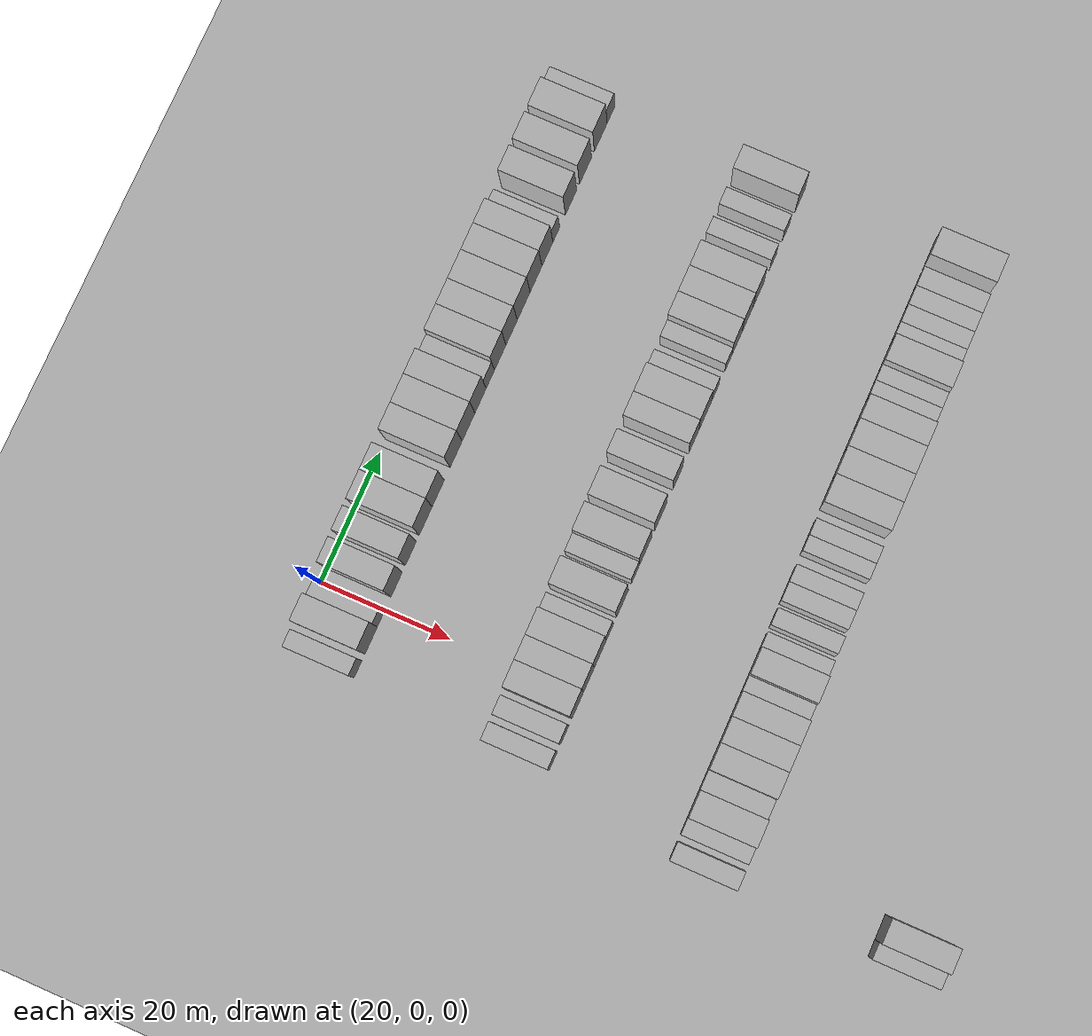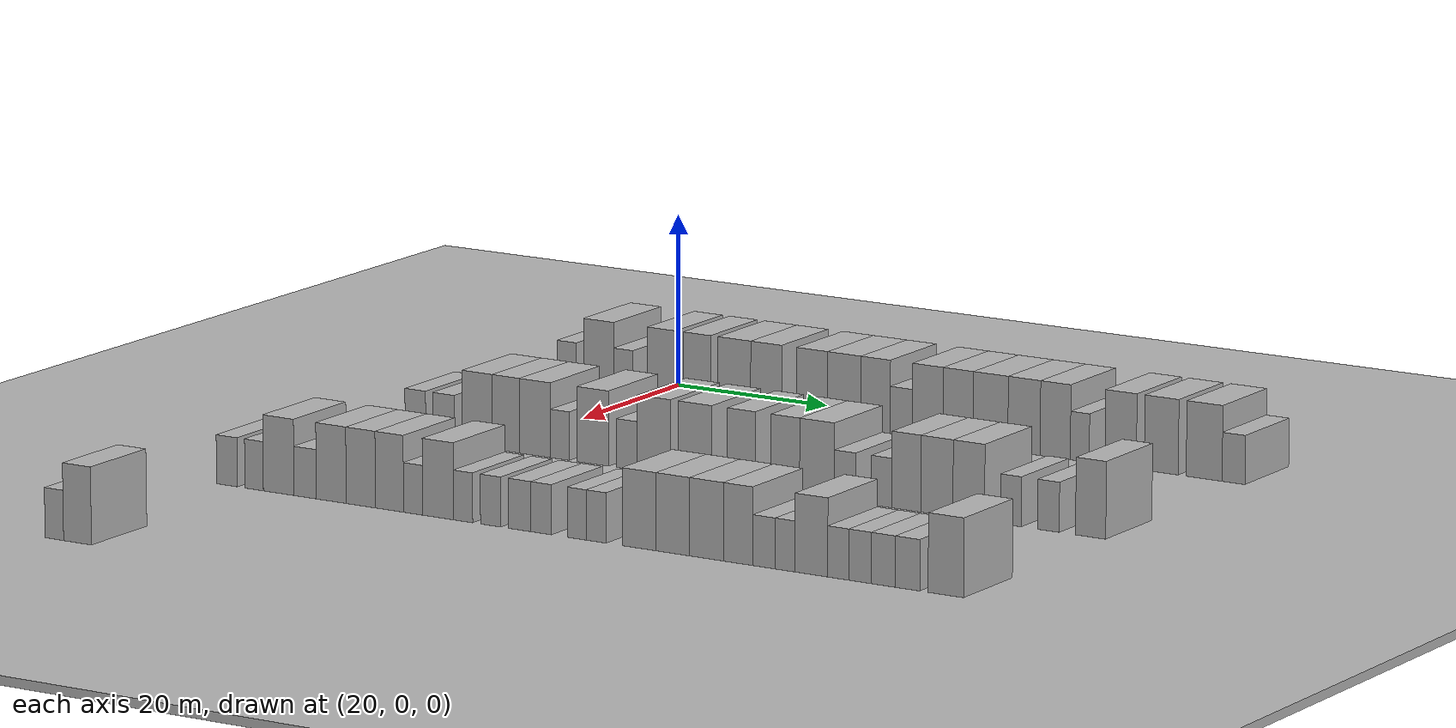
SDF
<sdf version="1.6">
 <world name="default">
  <include><name>ground_plane_1</name><uri>model://HANNAS_ground_plane</uri></include>
  <include>
   <name>ground_plane_2</name>
   <uri>model://HANNAS_ground_plane</uri>
   <pose>100 0 0  0 0 0</pose>
  </include>
  <model name="building_116">
   <static>1</static>
   <pose>25.0000 -8.9039 0 0.000000 0.000000 0.000000</pose>
   <link name="link">
    <pose>0 0 3.00 0 0 0</pose>
    <collision name="collision"><geometry><box><size>10.0000 2.6081 6.0000</size></box></geometry></collision>
    <visual name="visual">
     <cast_shadows>0</cast_shadows>
     <geometry><box><size>10.0000 2.6081 6.0000</size></box></geometry>
     <material>
      <script>
       <uri>model://HANNAS_wall/materials/scripts</uri>
       <uri>model://HANNAS_wall/materials/textures</uri>
       <name>vrc/HANNAS_wall</name>
      </script>
     </material>
    </visual>
   </link>
  </model>
  <model name="building_117">
   <static>1</static>
   <pose>25.0000 -4.5359 0 0.000000 0.000000 0.000000</pose>
   <link name="link">
    <pose>0 0 4.50 0 0 0</pose>
    <collision name="collision"><geometry><box><size>10.0000 4.1280 9.0000</size></box></geometry></collision>
    <visual name="visual">
     <cast_shadows>0</cast_shadows>
     <geometry><box><size>10.0000 4.1280 9.0000</size></box></geometry>
     <material>
      <script>
       <uri>model://HANNAS_wall/materials/scripts</uri>
       <uri>model://HANNAS_wall/materials/textures</uri>
       <name>vrc/HANNAS_wall</name>
      </script>
     </material>
    </visual>
   </link>
  </model>
  <model name="building_118">
   <static>1</static>
   <pose>25.0000 -1.1816 0 0.000000 0.000000 0.000000</pose>
   <link name="link">
    <pose>0 0 3.00 0 0 0</pose>
    <collision name="collision"><geometry><box><size>10.0000 2.5805 6.0000</size></box></geometry></collision>
    <visual name="visual">
     <cast_shadows>0</cast_shadows>
     <geometry><box><size>10.0000 2.5805 6.0000</size></box></geometry>
     <material>
      <script>
       <uri>model://HANNAS_wall/materials/scripts</uri>
       <uri>model://HANNAS_wall/materials/textures</uri>
       <name>vrc/HANNAS_wall</name>
      </script>
     </material>
    </visual>
   </link>
  </model>
  <model name="building_119">
   <static>1</static>
   <pose>25.0000 4.0080 0 0.000000 0.000000 0.000000</pose>
   <link name="link">
    <pose>0 0 4.50 0 0 0</pose>
    <collision name="collision"><geometry><box><size>10.0000 3.7988 9.0000</size></box></geometry></collision>
    <visual name="visual">
     <cast_shadows>0</cast_shadows>
     <geometry><box><size>10.0000 3.7988 9.0000</size></box></geometry>
     <material>
      <script>
       <uri>model://HANNAS_wall/materials/scripts</uri>
       <uri>model://HANNAS_wall/materials/textures</uri>
       <name>vrc/HANNAS_wall</name>
      </script>
     </material>
    </visual>
   </link>
  </model>
  <model name="building_120">
   <static>1</static>
   <pose>25.0000 8.7498 0 0.000000 0.000000 0.000000</pose>
   <link name="link">
    <pose>0 0 4.50 0 0 0</pose>
    <collision name="collision"><geometry><box><size>10.0000 3.6847 9.0000</size></box></geometry></collision>
    <visual name="visual">
     <cast_shadows>0</cast_shadows>
     <geometry><box><size>10.0000 3.6847 9.0000</size></box></geometry>
     <material>
      <script>
       <uri>model://HANNAS_wall/materials/scripts</uri>
       <uri>model://HANNAS_wall/materials/textures</uri>
       <name>vrc/HANNAS_wall</name>
      </script>
     </material>
    </visual>
   </link>
  </model>
  <model name="building_121">
   <static>1</static>
   <pose>25.0000 13.7771 0 0.000000 0.000000 0.000000</pose>
   <link name="link">
    <pose>0 0 4.50 0 0 0</pose>
    <collision name="collision"><geometry><box><size>10.0000 4.3699 9.0000</size></box></geometry></collision>
    <visual name="visual">
     <cast_shadows>0</cast_shadows>
     <geometry><box><size>10.0000 4.3699 9.0000</size></box></geometry>
     <material>
      <script>
       <uri>model://HANNAS_wall/materials/scripts</uri>
       <uri>model://HANNAS_wall/materials/textures</uri>
       <name>vrc/HANNAS_wall</name>
      </script>
     </material>
    </visual>
   </link>
  </model>
  <model name="building_122">
   <static>1</static>
   <pose>25.0000 18.0239 0 0.000000 0.000000 0.000000</pose>
   <link name="link">
    <pose>0 0 4.50 0 0 0</pose>
    <collision name="collision"><geometry><box><size>10.0000 4.1237 9.0000</size></box></geometry></collision>
    <visual name="visual">
     <cast_shadows>0</cast_shadows>
     <geometry><box><size>10.0000 4.1237 9.0000</size></box></geometry>
     <material>
      <script>
       <uri>model://HANNAS_wall/materials/scripts</uri>
       <uri>model://HANNAS_wall/materials/textures</uri>
       <name>vrc/HANNAS_wall</name>
      </script>
     </material>
    </visual>
   </link>
  </model>
  <model name="building_123">
   <static>1</static>
   <pose>25.0000 24.1255 0 0.000000 0.000000 0.000000</pose>
   <link name="link">
    <pose>0 0 4.50 0 0 0</pose>
    <collision name="collision"><geometry><box><size>10.0000 4.0795 9.0000</size></box></geometry></collision>
    <visual name="visual">
     <cast_shadows>0</cast_shadows>
     <geometry><box><size>10.0000 4.0795 9.0000</size></box></geometry>
     <material>
      <script>
       <uri>model://HANNAS_wall/materials/scripts</uri>
       <uri>model://HANNAS_wall/materials/textures</uri>
       <name>vrc/HANNAS_wall</name>
      </script>
     </material>
    </visual>
   </link>
  </model>
  <model name="building_124">
   <static>1</static>
   <pose>25.0000 28.3544 0 0.000000 0.000000 0.000000</pose>
   <link name="link">
    <pose>0 0 4.50 0 0 0</pose>
    <collision name="collision"><geometry><box><size>10.0000 4.3783 9.0000</size></box></geometry></collision>
    <visual name="visual">
     <cast_shadows>0</cast_shadows>
     <geometry><box><size>10.0000 4.3783 9.0000</size></box></geometry>
     <material>
      <script>
       <uri>model://HANNAS_wall/materials/scripts</uri>
       <uri>model://HANNAS_wall/materials/textures</uri>
       <name>vrc/HANNAS_wall</name>
      </script>
     </material>
    </visual>
   </link>
  </model>
  <model name="building_125">
   <static>1</static>
   <pose>25.0000 32.4743 0 0.000000 0.000000 0.000000</pose>
   <link name="link">
    <pose>0 0 4.50 0 0 0</pose>
    <collision name="collision"><geometry><box><size>10.0000 3.8614 9.0000</size></box></geometry></collision>
    <visual name="visual">
     <cast_shadows>0</cast_shadows>
     <geometry><box><size>10.0000 3.8614 9.0000</size></box></geometry>
     <material>
      <script>
       <uri>model://HANNAS_wall/materials/scripts</uri>
       <uri>model://HANNAS_wall/materials/textures</uri>
       <name>vrc/HANNAS_wall</name>
      </script>
     </material>
    </visual>
   </link>
  </model>
  <model name="building_126">
   <static>1</static>
   <pose>25.0000 35.8533 0 0.000000 0.000000 0.000000</pose>
   <link name="link">
    <pose>0 0 3.00 0 0 0</pose>
    <collision name="collision"><geometry><box><size>10.0000 2.8966 6.0000</size></box></geometry></collision>
    <visual name="visual">
     <cast_shadows>0</cast_shadows>
     <geometry><box><size>10.0000 2.8966 6.0000</size></box></geometry>
     <material>
      <script>
       <uri>model://HANNAS_wall/materials/scripts</uri>
       <uri>model://HANNAS_wall/materials/textures</uri>
       <name>vrc/HANNAS_wall</name>
      </script>
     </material>
    </visual>
   </link>
  </model>
  <model name="building_127">
   <static>1</static>
   <pose>25.0000 39.2878 0 0.000000 0.000000 0.000000</pose>
   <link name="link">
    <pose>0 0 4.50 0 0 0</pose>
    <collision name="collision"><geometry><box><size>10.0000 3.9725 9.0000</size></box></geometry></collision>
    <visual name="visual">
     <cast_shadows>0</cast_shadows>
     <geometry><box><size>10.0000 3.9725 9.0000</size></box></geometry>
     <material>
      <script>
       <uri>model://HANNAS_wall/materials/scripts</uri>
       <uri>model://HANNAS_wall/materials/textures</uri>
       <name>vrc/HANNAS_wall</name>
      </script>
     </material>
    </visual>
   </link>
  </model>
  <model name="building_128">
   <static>1</static>
   <pose>25.0000 43.2320 0 0.000000 0.000000 0.000000</pose>
   <link name="link">
    <pose>0 0 4.50 0 0 0</pose>
    <collision name="collision"><geometry><box><size>10.0000 3.9159 9.0000</size></box></geometry></collision>
    <visual name="visual">
     <cast_shadows>0</cast_shadows>
     <geometry><box><size>10.0000 3.9159 9.0000</size></box></geometry>
     <material>
      <script>
       <uri>model://HANNAS_wall/materials/scripts</uri>
       <uri>model://HANNAS_wall/materials/textures</uri>
       <name>vrc/HANNAS_wall</name>
      </script>
     </material>
    </visual>
   </link>
  </model>
  <model name="building_129">
   <static>1</static>
   <pose>25.0000 47.4251 0 0.000000 0.000000 0.000000</pose>
   <link name="link">
    <pose>0 0 4.50 0 0 0</pose>
    <collision name="collision"><geometry><box><size>10.0000 4.4703 9.0000</size></box></geometry></collision>
    <visual name="visual">
     <cast_shadows>0</cast_shadows>
     <geometry><box><size>10.0000 4.4703 9.0000</size></box></geometry>
     <material>
      <script>
       <uri>model://HANNAS_wall/materials/scripts</uri>
       <uri>model://HANNAS_wall/materials/textures</uri>
       <name>vrc/HANNAS_wall</name>
      </script>
     </material>
    </visual>
   </link>
  </model>
  <model name="building_130">
   <static>1</static>
   <pose>25.0000 51.7358 0 0.000000 0.000000 0.000000</pose>
   <link name="link">
    <pose>0 0 4.50 0 0 0</pose>
    <collision name="collision"><geometry><box><size>10.0000 4.1511 9.0000</size></box></geometry></collision>
    <visual name="visual">
     <cast_shadows>0</cast_shadows>
     <geometry><box><size>10.0000 4.1511 9.0000</size></box></geometry>
     <material>
      <script>
       <uri>model://HANNAS_wall/materials/scripts</uri>
       <uri>model://HANNAS_wall/materials/textures</uri>
       <name>vrc/HANNAS_wall</name>
      </script>
     </material>
    </visual>
   </link>
  </model>
  <model name="building_131">
   <static>1</static>
   <pose>25.0000 55.7422 0 0.000000 0.000000 0.000000</pose>
   <link name="link">
    <pose>0 0 4.50 0 0 0</pose>
    <collision name="collision"><geometry><box><size>10.0000 3.8616 9.0000</size></box></geometry></collision>
    <visual name="visual">
     <cast_shadows>0</cast_shadows>
     <geometry><box><size>10.0000 3.8616 9.0000</size></box></geometry>
     <material>
      <script>
       <uri>model://HANNAS_wall/materials/scripts</uri>
       <uri>model://HANNAS_wall/materials/textures</uri>
       <name>vrc/HANNAS_wall</name>
      </script>
     </material>
    </visual>
   </link>
  </model>
  <model name="building_132">
   <static>1</static>
   <pose>25.0000 58.8784 0 0.000000 0.000000 0.000000</pose>
   <link name="link">
    <pose>0 0 3.00 0 0 0</pose>
    <collision name="collision"><geometry><box><size>10.0000 2.4108 6.0000</size></box></geometry></collision>
    <visual name="visual">
     <cast_shadows>0</cast_shadows>
     <geometry><box><size>10.0000 2.4108 6.0000</size></box></geometry>
     <material>
      <script>
       <uri>model://HANNAS_wall/materials/scripts</uri>
       <uri>model://HANNAS_wall/materials/textures</uri>
       <name>vrc/HANNAS_wall</name>
      </script>
     </material>
    </visual>
   </link>
  </model>
  <model name="building_133">
   <static>1</static>
   <pose>25.0000 64.0656 0 0.000000 0.000000 0.000000</pose>
   <link name="link">
    <pose>0 0 4.50 0 0 0</pose>
    <collision name="collision"><geometry><box><size>10.0000 3.9636 9.0000</size></box></geometry></collision>
    <visual name="visual">
     <cast_shadows>0</cast_shadows>
     <geometry><box><size>10.0000 3.9636 9.0000</size></box></geometry>
     <material>
      <script>
       <uri>model://HANNAS_wall/materials/scripts</uri>
       <uri>model://HANNAS_wall/materials/textures</uri>
       <name>vrc/HANNAS_wall</name>
      </script>
     </material>
    </visual>
   </link>
  </model>
  <model name="building_134">
   <static>1</static>
   <pose>25.0000 69.1838 0 0.000000 0.000000 0.000000</pose>
   <link name="link">
    <pose>0 0 4.50 0 0 0</pose>
    <collision name="collision"><geometry><box><size>10.0000 4.2728 9.0000</size></box></geometry></collision>
    <visual name="visual">
     <cast_shadows>0</cast_shadows>
     <geometry><box><size>10.0000 4.2728 9.0000</size></box></geometry>
     <material>
      <script>
       <uri>model://HANNAS_wall/materials/scripts</uri>
       <uri>model://HANNAS_wall/materials/textures</uri>
       <name>vrc/HANNAS_wall</name>
      </script>
     </material>
    </visual>
   </link>
  </model>
  <model name="building_135">
   <static>1</static>
   <pose>25.0000 74.5668 0 0.000000 0.000000 0.000000</pose>
   <link name="link">
    <pose>0 0 4.50 0 0 0</pose>
    <collision name="collision"><geometry><box><size>10.0000 4.4932 9.0000</size></box></geometry></collision>
    <visual name="visual">
     <cast_shadows>0</cast_shadows>
     <geometry><box><size>10.0000 4.4932 9.0000</size></box></geometry>
     <material>
      <script>
       <uri>model://HANNAS_wall/materials/scripts</uri>
       <uri>model://HANNAS_wall/materials/textures</uri>
       <name>vrc/HANNAS_wall</name>
      </script>
     </material>
    </visual>
   </link>
  </model>
  <model name="building_136">
   <static>1</static>
   <pose>25.0000 78.2460 0 0.000000 0.000000 0.000000</pose>
   <link name="link">
    <pose>0 0 3.00 0 0 0</pose>
    <collision name="collision"><geometry><box><size>10.0000 2.8652 6.0000</size></box></geometry></collision>
    <visual name="visual">
     <cast_shadows>0</cast_shadows>
     <geometry><box><size>10.0000 2.8652 6.0000</size></box></geometry>
     <material>
      <script>
       <uri>model://HANNAS_wall/materials/scripts</uri>
       <uri>model://HANNAS_wall/materials/textures</uri>
       <name>vrc/HANNAS_wall</name>
      </script>
     </material>
    </visual>
   </link>
  </model>
  <model name="building_328">
   <static>1</static>
   <pose>55.0000 -9.5306 0 0.000000 0.000000 0.000000</pose>
   <link name="link">
    <pose>0 0 3.00 0 0 0</pose>
    <collision name="collision"><geometry><box><size>10.0000 2.7845 6.0000</size></box></geometry></collision>
    <visual name="visual">
     <cast_shadows>0</cast_shadows>
     <geometry><box><size>10.0000 2.7845 6.0000</size></box></geometry>
     <material>
      <script>
       <uri>model://HANNAS_wall/materials/scripts</uri>
       <uri>model://HANNAS_wall/materials/textures</uri>
       <name>vrc/HANNAS_wall</name>
      </script>
     </material>
    </visual>
   </link>
  </model>
  <model name="building_329">
   <static>1</static>
   <pose>55.0000 -5.6900 0 0.000000 0.000000 0.000000</pose>
   <link name="link">
    <pose>0 0 3.00 0 0 0</pose>
    <collision name="collision"><geometry><box><size>10.0000 2.8967 6.0000</size></box></geometry></collision>
    <visual name="visual">
     <cast_shadows>0</cast_shadows>
     <geometry><box><size>10.0000 2.8967 6.0000</size></box></geometry>
     <material>
      <script>
       <uri>model://HANNAS_wall/materials/scripts</uri>
       <uri>model://HANNAS_wall/materials/textures</uri>
       <name>vrc/HANNAS_wall</name>
      </script>
     </material>
    </visual>
   </link>
  </model>
  <model name="building_330">
   <static>1</static>
   <pose>55.0000 -1.2153 0 0.000000 0.000000 0.000000</pose>
   <link name="link">
    <pose>0 0 4.50 0 0 0</pose>
    <collision name="collision"><geometry><box><size>10.0000 4.0526 9.0000</size></box></geometry></collision>
    <visual name="visual">
     <cast_shadows>0</cast_shadows>
     <geometry><box><size>10.0000 4.0526 9.0000</size></box></geometry>
     <material>
      <script>
       <uri>model://HANNAS_wall/materials/scripts</uri>
       <uri>model://HANNAS_wall/materials/textures</uri>
       <name>vrc/HANNAS_wall</name>
      </script>
     </material>
    </visual>
   </link>
  </model>
  <model name="building_331">
   <static>1</static>
   <pose>55.0000 2.6371 0 0.000000 0.000000 0.000000</pose>
   <link name="link">
    <pose>0 0 4.50 0 0 0</pose>
    <collision name="collision"><geometry><box><size>10.0000 3.6522 9.0000</size></box></geometry></collision>
    <visual name="visual">
     <cast_shadows>0</cast_shadows>
     <geometry><box><size>10.0000 3.6522 9.0000</size></box></geometry>
     <material>
      <script>
       <uri>model://HANNAS_wall/materials/scripts</uri>
       <uri>model://HANNAS_wall/materials/textures</uri>
       <name>vrc/HANNAS_wall</name>
      </script>
     </material>
    </visual>
   </link>
  </model>
  <model name="building_332">
   <static>1</static>
   <pose>55.0000 6.5188 0 0.000000 0.000000 0.000000</pose>
   <link name="link">
    <pose>0 0 4.50 0 0 0</pose>
    <collision name="collision"><geometry><box><size>10.0000 4.1113 9.0000</size></box></geometry></collision>
    <visual name="visual">
     <cast_shadows>0</cast_shadows>
     <geometry><box><size>10.0000 4.1113 9.0000</size></box></geometry>
     <material>
      <script>
       <uri>model://HANNAS_wall/materials/scripts</uri>
       <uri>model://HANNAS_wall/materials/textures</uri>
       <name>vrc/HANNAS_wall</name>
      </script>
     </material>
    </visual>
   </link>
  </model>
  <model name="building_333">
   <static>1</static>
   <pose>55.0000 9.8102 0 0.000000 0.000000 0.000000</pose>
   <link name="link">
    <pose>0 0 3.00 0 0 0</pose>
    <collision name="collision"><geometry><box><size>10.0000 2.4715 6.0000</size></box></geometry></collision>
    <visual name="visual">
     <cast_shadows>0</cast_shadows>
     <geometry><box><size>10.0000 2.4715 6.0000</size></box></geometry>
     <material>
      <script>
       <uri>model://HANNAS_wall/materials/scripts</uri>
       <uri>model://HANNAS_wall/materials/textures</uri>
       <name>vrc/HANNAS_wall</name>
      </script>
     </material>
    </visual>
   </link>
  </model>
  <model name="building_334">
   <static>1</static>
   <pose>55.0000 14.1361 0 0.000000 0.000000 0.000000</pose>
   <link name="link">
    <pose>0 0 4.50 0 0 0</pose>
    <collision name="collision"><geometry><box><size>10.0000 4.1803 9.0000</size></box></geometry></collision>
    <visual name="visual">
     <cast_shadows>0</cast_shadows>
     <geometry><box><size>10.0000 4.1803 9.0000</size></box></geometry>
     <material>
      <script>
       <uri>model://HANNAS_wall/materials/scripts</uri>
       <uri>model://HANNAS_wall/materials/textures</uri>
       <name>vrc/HANNAS_wall</name>
      </script>
     </material>
    </visual>
   </link>
  </model>
  <model name="building_335">
   <static>1</static>
   <pose>55.0000 18.6090 0 0.000000 0.000000 0.000000</pose>
   <link name="link">
    <pose>0 0 3.00 0 0 0</pose>
    <collision name="collision"><geometry><box><size>10.0000 2.7654 6.0000</size></box></geometry></collision>
    <visual name="visual">
     <cast_shadows>0</cast_shadows>
     <geometry><box><size>10.0000 2.7654 6.0000</size></box></geometry>
     <material>
      <script>
       <uri>model://HANNAS_wall/materials/scripts</uri>
       <uri>model://HANNAS_wall/materials/textures</uri>
       <name>vrc/HANNAS_wall</name>
      </script>
     </material>
    </visual>
   </link>
  </model>
  <model name="building_336">
   <static>1</static>
   <pose>55.0000 22.1634 0 0.000000 0.000000 0.000000</pose>
   <link name="link">
    <pose>0 0 4.50 0 0 0</pose>
    <collision name="collision"><geometry><box><size>10.0000 4.3434 9.0000</size></box></geometry></collision>
    <visual name="visual">
     <cast_shadows>0</cast_shadows>
     <geometry><box><size>10.0000 4.3434 9.0000</size></box></geometry>
     <material>
      <script>
       <uri>model://HANNAS_wall/materials/scripts</uri>
       <uri>model://HANNAS_wall/materials/textures</uri>
       <name>vrc/HANNAS_wall</name>
      </script>
     </material>
    </visual>
   </link>
  </model>
  <model name="building_337">
   <static>1</static>
   <pose>55.0000 27.5136 0 0.000000 0.000000 0.000000</pose>
   <link name="link">
    <pose>0 0 4.50 0 0 0</pose>
    <collision name="collision"><geometry><box><size>10.0000 4.3571 9.0000</size></box></geometry></collision>
    <visual name="visual">
     <cast_shadows>0</cast_shadows>
     <geometry><box><size>10.0000 4.3571 9.0000</size></box></geometry>
     <material>
      <script>
       <uri>model://HANNAS_wall/materials/scripts</uri>
       <uri>model://HANNAS_wall/materials/textures</uri>
       <name>vrc/HANNAS_wall</name>
      </script>
     </material>
    </visual>
   </link>
  </model>
  <model name="building_338">
   <static>1</static>
   <pose>55.0000 33.4937 0 0.000000 0.000000 0.000000</pose>
   <link name="link">
    <pose>0 0 4.50 0 0 0</pose>
    <collision name="collision"><geometry><box><size>10.0000 3.6032 9.0000</size></box></geometry></collision>
    <visual name="visual">
     <cast_shadows>0</cast_shadows>
     <geometry><box><size>10.0000 3.6032 9.0000</size></box></geometry>
     <material>
      <script>
       <uri>model://HANNAS_wall/materials/scripts</uri>
       <uri>model://HANNAS_wall/materials/textures</uri>
       <name>vrc/HANNAS_wall</name>
      </script>
     </material>
    </visual>
   </link>
  </model>
  <model name="building_339">
   <static>1</static>
   <pose>55.0000 39.1257 0 0.000000 0.000000 0.000000</pose>
   <link name="link">
    <pose>0 0 4.50 0 0 0</pose>
    <collision name="collision"><geometry><box><size>10.0000 3.6606 9.0000</size></box></geometry></collision>
    <visual name="visual">
     <cast_shadows>0</cast_shadows>
     <geometry><box><size>10.0000 3.6606 9.0000</size></box></geometry>
     <material>
      <script>
       <uri>model://HANNAS_wall/materials/scripts</uri>
       <uri>model://HANNAS_wall/materials/textures</uri>
       <name>vrc/HANNAS_wall</name>
      </script>
     </material>
    </visual>
   </link>
  </model>
  <model name="building_340">
   <static>1</static>
   <pose>55.0000 43.1755 0 0.000000 0.000000 0.000000</pose>
   <link name="link">
    <pose>0 0 4.50 0 0 0</pose>
    <collision name="collision"><geometry><box><size>10.0000 4.4391 9.0000</size></box></geometry></collision>
    <visual name="visual">
     <cast_shadows>0</cast_shadows>
     <geometry><box><size>10.0000 4.4391 9.0000</size></box></geometry>
     <material>
      <script>
       <uri>model://HANNAS_wall/materials/scripts</uri>
       <uri>model://HANNAS_wall/materials/textures</uri>
       <name>vrc/HANNAS_wall</name>
      </script>
     </material>
    </visual>
   </link>
  </model>
  <model name="building_341">
   <static>1</static>
   <pose>55.0000 46.7483 0 0.000000 0.000000 0.000000</pose>
   <link name="link">
    <pose>0 0 3.00 0 0 0</pose>
    <collision name="collision"><geometry><box><size>10.0000 2.7066 6.0000</size></box></geometry></collision>
    <visual name="visual">
     <cast_shadows>0</cast_shadows>
     <geometry><box><size>10.0000 2.7066 6.0000</size></box></geometry>
     <material>
      <script>
       <uri>model://HANNAS_wall/materials/scripts</uri>
       <uri>model://HANNAS_wall/materials/textures</uri>
       <name>vrc/HANNAS_wall</name>
      </script>
     </material>
    </visual>
   </link>
  </model>
  <model name="building_342">
   <static>1</static>
   <pose>55.0000 51.3840 0 0.000000 0.000000 0.000000</pose>
   <link name="link">
    <pose>0 0 3.00 0 0 0</pose>
    <collision name="collision"><geometry><box><size>10.0000 2.5648 6.0000</size></box></geometry></collision>
    <visual name="visual">
     <cast_shadows>0</cast_shadows>
     <geometry><box><size>10.0000 2.5648 6.0000</size></box></geometry>
     <material>
      <script>
       <uri>model://HANNAS_wall/materials/scripts</uri>
       <uri>model://HANNAS_wall/materials/textures</uri>
       <name>vrc/HANNAS_wall</name>
      </script>
     </material>
    </visual>
   </link>
  </model>
  <model name="building_343">
   <static>1</static>
   <pose>55.0000 54.5014 0 0.000000 0.000000 0.000000</pose>
   <link name="link">
    <pose>0 0 4.50 0 0 0</pose>
    <collision name="collision"><geometry><box><size>10.0000 3.6701 9.0000</size></box></geometry></collision>
    <visual name="visual">
     <cast_shadows>0</cast_shadows>
     <geometry><box><size>10.0000 3.6701 9.0000</size></box></geometry>
     <material>
      <script>
       <uri>model://HANNAS_wall/materials/scripts</uri>
       <uri>model://HANNAS_wall/materials/textures</uri>
       <name>vrc/HANNAS_wall</name>
      </script>
     </material>
    </visual>
   </link>
  </model>
  <model name="building_344">
   <static>1</static>
   <pose>55.0000 58.3378 0 0.000000 0.000000 0.000000</pose>
   <link name="link">
    <pose>0 0 4.50 0 0 0</pose>
    <collision name="collision"><geometry><box><size>10.0000 4.0027 9.0000</size></box></geometry></collision>
    <visual name="visual">
     <cast_shadows>0</cast_shadows>
     <geometry><box><size>10.0000 4.0027 9.0000</size></box></geometry>
     <material>
      <script>
       <uri>model://HANNAS_wall/materials/scripts</uri>
       <uri>model://HANNAS_wall/materials/textures</uri>
       <name>vrc/HANNAS_wall</name>
      </script>
     </material>
    </visual>
   </link>
  </model>
  <model name="building_345">
   <static>1</static>
   <pose>55.0000 62.3139 0 0.000000 0.000000 0.000000</pose>
   <link name="link">
    <pose>0 0 4.50 0 0 0</pose>
    <collision name="collision"><geometry><box><size>10.0000 3.9496 9.0000</size></box></geometry></collision>
    <visual name="visual">
     <cast_shadows>0</cast_shadows>
     <geometry><box><size>10.0000 3.9496 9.0000</size></box></geometry>
     <material>
      <script>
       <uri>model://HANNAS_wall/materials/scripts</uri>
       <uri>model://HANNAS_wall/materials/textures</uri>
       <name>vrc/HANNAS_wall</name>
      </script>
     </material>
    </visual>
   </link>
  </model>
  <model name="building_346">
   <static>1</static>
   <pose>55.0000 67.5729 0 0.000000 0.000000 0.000000</pose>
   <link name="link">
    <pose>0 0 3.00 0 0 0</pose>
    <collision name="collision"><geometry><box><size>10.0000 2.5684 6.0000</size></box></geometry></collision>
    <visual name="visual">
     <cast_shadows>0</cast_shadows>
     <geometry><box><size>10.0000 2.5684 6.0000</size></box></geometry>
     <material>
      <script>
       <uri>model://HANNAS_wall/materials/scripts</uri>
       <uri>model://HANNAS_wall/materials/textures</uri>
       <name>vrc/HANNAS_wall</name>
      </script>
     </material>
    </visual>
   </link>
  </model>
  <model name="building_347">
   <static>1</static>
   <pose>55.0000 72.1980 0 0.000000 0.000000 0.000000</pose>
   <link name="link">
    <pose>0 0 3.00 0 0 0</pose>
    <collision name="collision"><geometry><box><size>10.0000 2.6817 6.0000</size></box></geometry></collision>
    <visual name="visual">
     <cast_shadows>0</cast_shadows>
     <geometry><box><size>10.0000 2.6817 6.0000</size></box></geometry>
     <material>
      <script>
       <uri>model://HANNAS_wall/materials/scripts</uri>
       <uri>model://HANNAS_wall/materials/textures</uri>
       <name>vrc/HANNAS_wall</name>
      </script>
     </material>
    </visual>
   </link>
  </model>
  <model name="building_348">
   <static>1</static>
   <pose>55.0000 77.3922 0 0.000000 0.000000 0.000000</pose>
   <link name="link">
    <pose>0 0 4.50 0 0 0</pose>
    <collision name="collision"><geometry><box><size>10.0000 3.7066 9.0000</size></box></geometry></collision>
    <visual name="visual">
     <cast_shadows>0</cast_shadows>
     <geometry><box><size>10.0000 3.7066 9.0000</size></box></geometry>
     <material>
      <script>
       <uri>model://HANNAS_wall/materials/scripts</uri>
       <uri>model://HANNAS_wall/materials/textures</uri>
       <name>vrc/HANNAS_wall</name>
      </script>
     </material>
    </visual>
   </link>
  </model>
  <model name="building_551">
   <static>1</static>
   <pose>85.0000 -14.0439 0 0.000000 0.000000 0.000000</pose>
   <link name="link">
    <pose>0 0 3.00 0 0 0</pose>
    <collision name="collision"><geometry><box><size>10.0000 2.7882 6.0000</size></box></geometry></collision>
    <visual name="visual">
     <cast_shadows>0</cast_shadows>
     <geometry><box><size>10.0000 2.7882 6.0000</size></box></geometry>
     <material>
      <script>
       <uri>model://HANNAS_wall/materials/scripts</uri>
       <uri>model://HANNAS_wall/materials/textures</uri>
       <name>vrc/HANNAS_wall</name>
      </script>
     </material>
    </visual>
   </link>
  </model>
  <model name="building_552">
   <static>1</static>
   <pose>85.0000 -10.4235 0 0.000000 0.000000 0.000000</pose>
   <link name="link">
    <pose>0 0 3.00 0 0 0</pose>
    <collision name="collision"><geometry><box><size>10.0000 2.4527 6.0000</size></box></geometry></collision>
    <visual name="visual">
     <cast_shadows>0</cast_shadows>
     <geometry><box><size>10.0000 2.4527 6.0000</size></box></geometry>
     <material>
      <script>
       <uri>model://HANNAS_wall/materials/scripts</uri>
       <uri>model://HANNAS_wall/materials/textures</uri>
       <name>vrc/HANNAS_wall</name>
      </script>
     </material>
    </visual>
   </link>
  </model>
  <model name="building_553">
   <static>1</static>
   <pose>85.0000 -7.1564 0 0.000000 0.000000 0.000000</pose>
   <link name="link">
    <pose>0 0 4.50 0 0 0</pose>
    <collision name="collision"><geometry><box><size>10.0000 4.0813 9.0000</size></box></geometry></collision>
    <visual name="visual">
     <cast_shadows>0</cast_shadows>
     <geometry><box><size>10.0000 4.0813 9.0000</size></box></geometry>
     <material>
      <script>
       <uri>model://HANNAS_wall/materials/scripts</uri>
       <uri>model://HANNAS_wall/materials/textures</uri>
       <name>vrc/HANNAS_wall</name>
      </script>
     </material>
    </visual>
   </link>
  </model>
  <model name="building_554">
   <static>1</static>
   <pose>85.0000 -3.6442 0 0.000000 0.000000 0.000000</pose>
   <link name="link">
    <pose>0 0 3.00 0 0 0</pose>
    <collision name="collision"><geometry><box><size>10.0000 2.9431 6.0000</size></box></geometry></collision>
    <visual name="visual">
     <cast_shadows>0</cast_shadows>
     <geometry><box><size>10.0000 2.9431 6.0000</size></box></geometry>
     <material>
      <script>
       <uri>model://HANNAS_wall/materials/scripts</uri>
       <uri>model://HANNAS_wall/materials/textures</uri>
       <name>vrc/HANNAS_wall</name>
      </script>
     </material>
    </visual>
   </link>
  </model>
  <model name="building_555">
   <static>1</static>
   <pose>85.0000 -0.2015 0 0.000000 0.000000 0.000000</pose>
   <link name="link">
    <pose>0 0 4.50 0 0 0</pose>
    <collision name="collision"><geometry><box><size>10.0000 3.9424 9.0000</size></box></geometry></collision>
    <visual name="visual">
     <cast_shadows>0</cast_shadows>
     <geometry><box><size>10.0000 3.9424 9.0000</size></box></geometry>
     <material>
      <script>
       <uri>model://HANNAS_wall/materials/scripts</uri>
       <uri>model://HANNAS_wall/materials/textures</uri>
       <name>vrc/HANNAS_wall</name>
      </script>
     </material>
    </visual>
   </link>
  </model>
  <model name="building_556">
   <static>1</static>
   <pose>85.0000 3.6872 0 0.000000 0.000000 0.000000</pose>
   <link name="link">
    <pose>0 0 4.50 0 0 0</pose>
    <collision name="collision"><geometry><box><size>10.0000 3.8349 9.0000</size></box></geometry></collision>
    <visual name="visual">
     <cast_shadows>0</cast_shadows>
     <geometry><box><size>10.0000 3.8349 9.0000</size></box></geometry>
     <material>
      <script>
       <uri>model://HANNAS_wall/materials/scripts</uri>
       <uri>model://HANNAS_wall/materials/textures</uri>
       <name>vrc/HANNAS_wall</name>
      </script>
     </material>
    </visual>
   </link>
  </model>
  <model name="building_557">
   <static>1</static>
   <pose>85.0000 7.4424 0 0.000000 0.000000 0.000000</pose>
   <link name="link">
    <pose>0 0 4.50 0 0 0</pose>
    <collision name="collision"><geometry><box><size>10.0000 3.6756 9.0000</size></box></geometry></collision>
    <visual name="visual">
     <cast_shadows>0</cast_shadows>
     <geometry><box><size>10.0000 3.6756 9.0000</size></box></geometry>
     <material>
      <script>
       <uri>model://HANNAS_wall/materials/scripts</uri>
       <uri>model://HANNAS_wall/materials/textures</uri>
       <name>vrc/HANNAS_wall</name>
      </script>
     </material>
    </visual>
   </link>
  </model>
  <model name="building_558">
   <static>1</static>
   <pose>85.0000 10.5190 0 0.000000 0.000000 0.000000</pose>
   <link name="link">
    <pose>0 0 3.00 0 0 0</pose>
    <collision name="collision"><geometry><box><size>10.0000 2.4777 6.0000</size></box></geometry></collision>
    <visual name="visual">
     <cast_shadows>0</cast_shadows>
     <geometry><box><size>10.0000 2.4777 6.0000</size></box></geometry>
     <material>
      <script>
       <uri>model://HANNAS_wall/materials/scripts</uri>
       <uri>model://HANNAS_wall/materials/textures</uri>
       <name>vrc/HANNAS_wall</name>
      </script>
     </material>
    </visual>
   </link>
  </model>
  <model name="building_559">
   <static>1</static>
   <pose>85.0000 13.7704 0 0.000000 0.000000 0.000000</pose>
   <link name="link">
    <pose>0 0 4.50 0 0 0</pose>
    <collision name="collision"><geometry><box><size>10.0000 4.0249 9.0000</size></box></geometry></collision>
    <visual name="visual">
     <cast_shadows>0</cast_shadows>
     <geometry><box><size>10.0000 4.0249 9.0000</size></box></geometry>
     <material>
      <script>
       <uri>model://HANNAS_wall/materials/scripts</uri>
       <uri>model://HANNAS_wall/materials/textures</uri>
       <name>vrc/HANNAS_wall</name>
      </script>
     </material>
    </visual>
   </link>
  </model>
  <model name="building_560">
   <static>1</static>
   <pose>85.0000 17.0180 0 0.000000 0.000000 0.000000</pose>
   <link name="link">
    <pose>0 0 3.00 0 0 0</pose>
    <collision name="collision"><geometry><box><size>10.0000 2.4703 6.0000</size></box></geometry></collision>
    <visual name="visual">
     <cast_shadows>0</cast_shadows>
     <geometry><box><size>10.0000 2.4703 6.0000</size></box></geometry>
     <material>
      <script>
       <uri>model://HANNAS_wall/materials/scripts</uri>
       <uri>model://HANNAS_wall/materials/textures</uri>
       <name>vrc/HANNAS_wall</name>
      </script>
     </material>
    </visual>
   </link>
  </model>
  <model name="building_561">
   <static>1</static>
   <pose>85.0000 20.5569 0 0.000000 0.000000 0.000000</pose>
   <link name="link">
    <pose>0 0 3.00 0 0 0</pose>
    <collision name="collision"><geometry><box><size>10.0000 2.6074 6.0000</size></box></geometry></collision>
    <visual name="visual">
     <cast_shadows>0</cast_shadows>
     <geometry><box><size>10.0000 2.6074 6.0000</size></box></geometry>
     <material>
      <script>
       <uri>model://HANNAS_wall/materials/scripts</uri>
       <uri>model://HANNAS_wall/materials/textures</uri>
       <name>vrc/HANNAS_wall</name>
      </script>
     </material>
    </visual>
   </link>
  </model>
  <model name="building_562">
   <static>1</static>
   <pose>85.0000 24.3005 0 0.000000 0.000000 0.000000</pose>
   <link name="link">
    <pose>0 0 3.00 0 0 0</pose>
    <collision name="collision"><geometry><box><size>10.0000 2.8798 6.0000</size></box></geometry></collision>
    <visual name="visual">
     <cast_shadows>0</cast_shadows>
     <geometry><box><size>10.0000 2.8798 6.0000</size></box></geometry>
     <material>
      <script>
       <uri>model://HANNAS_wall/materials/scripts</uri>
       <uri>model://HANNAS_wall/materials/textures</uri>
       <name>vrc/HANNAS_wall</name>
      </script>
     </material>
    </visual>
   </link>
  </model>
  <model name="building_563">
   <static>1</static>
   <pose>85.0000 27.0578 0 0.000000 0.000000 0.000000</pose>
   <link name="link">
    <pose>0 0 3.00 0 0 0</pose>
    <collision name="collision"><geometry><box><size>10.0000 2.6349 6.0000</size></box></geometry></collision>
    <visual name="visual">
     <cast_shadows>0</cast_shadows>
     <geometry><box><size>10.0000 2.6349 6.0000</size></box></geometry>
     <material>
      <script>
       <uri>model://HANNAS_wall/materials/scripts</uri>
       <uri>model://HANNAS_wall/materials/textures</uri>
       <name>vrc/HANNAS_wall</name>
      </script>
     </material>
    </visual>
   </link>
  </model>
  <model name="building_564">
   <static>1</static>
   <pose>85.0000 31.5828 0 0.000000 0.000000 0.000000</pose>
   <link name="link">
    <pose>0 0 3.00 0 0 0</pose>
    <collision name="collision"><geometry><box><size>10.0000 2.4150 6.0000</size></box></geometry></collision>
    <visual name="visual">
     <cast_shadows>0</cast_shadows>
     <geometry><box><size>10.0000 2.4150 6.0000</size></box></geometry>
     <material>
      <script>
       <uri>model://HANNAS_wall/materials/scripts</uri>
       <uri>model://HANNAS_wall/materials/textures</uri>
       <name>vrc/HANNAS_wall</name>
      </script>
     </material>
    </visual>
   </link>
  </model>
  <model name="building_565">
   <static>1</static>
   <pose>85.0000 34.0593 0 0.000000 0.000000 0.000000</pose>
   <link name="link">
    <pose>0 0 3.00 0 0 0</pose>
    <collision name="collision"><geometry><box><size>10.0000 2.5382 6.0000</size></box></geometry></collision>
    <visual name="visual">
     <cast_shadows>0</cast_shadows>
     <geometry><box><size>10.0000 2.5382 6.0000</size></box></geometry>
     <material>
      <script>
       <uri>model://HANNAS_wall/materials/scripts</uri>
       <uri>model://HANNAS_wall/materials/textures</uri>
       <name>vrc/HANNAS_wall</name>
      </script>
     </material>
    </visual>
   </link>
  </model>
  <model name="building_566">
   <static>1</static>
   <pose>85.0000 39.4627 0 0.000000 0.000000 0.000000</pose>
   <link name="link">
    <pose>0 0 4.50 0 0 0</pose>
    <collision name="collision"><geometry><box><size>10.0000 4.2686 9.0000</size></box></geometry></collision>
    <visual name="visual">
     <cast_shadows>0</cast_shadows>
     <geometry><box><size>10.0000 4.2686 9.0000</size></box></geometry>
     <material>
      <script>
       <uri>model://HANNAS_wall/materials/scripts</uri>
       <uri>model://HANNAS_wall/materials/textures</uri>
       <name>vrc/HANNAS_wall</name>
      </script>
     </material>
    </visual>
   </link>
  </model>
  <model name="building_567">
   <static>1</static>
   <pose>85.0000 43.7030 0 0.000000 0.000000 0.000000</pose>
   <link name="link">
    <pose>0 0 4.50 0 0 0</pose>
    <collision name="collision"><geometry><box><size>10.0000 4.2121 9.0000</size></box></geometry></collision>
    <visual name="visual">
     <cast_shadows>0</cast_shadows>
     <geometry><box><size>10.0000 4.2121 9.0000</size></box></geometry>
     <material>
      <script>
       <uri>model://HANNAS_wall/materials/scripts</uri>
       <uri>model://HANNAS_wall/materials/textures</uri>
       <name>vrc/HANNAS_wall</name>
      </script>
     </material>
    </visual>
   </link>
  </model>
  <model name="building_568">
   <static>1</static>
   <pose>85.0000 47.9124 0 0.000000 0.000000 0.000000</pose>
   <link name="link">
    <pose>0 0 4.50 0 0 0</pose>
    <collision name="collision"><geometry><box><size>10.0000 4.2067 9.0000</size></box></geometry></collision>
    <visual name="visual">
     <cast_shadows>0</cast_shadows>
     <geometry><box><size>10.0000 4.2067 9.0000</size></box></geometry>
     <material>
      <script>
       <uri>model://HANNAS_wall/materials/scripts</uri>
       <uri>model://HANNAS_wall/materials/textures</uri>
       <name>vrc/HANNAS_wall</name>
      </script>
     </material>
    </visual>
   </link>
  </model>
  <model name="building_569">
   <static>1</static>
   <pose>85.0000 51.8481 0 0.000000 0.000000 0.000000</pose>
   <link name="link">
    <pose>0 0 4.50 0 0 0</pose>
    <collision name="collision"><geometry><box><size>10.0000 3.6646 9.0000</size></box></geometry></collision>
    <visual name="visual">
     <cast_shadows>0</cast_shadows>
     <geometry><box><size>10.0000 3.6646 9.0000</size></box></geometry>
     <material>
      <script>
       <uri>model://HANNAS_wall/materials/scripts</uri>
       <uri>model://HANNAS_wall/materials/textures</uri>
       <name>vrc/HANNAS_wall</name>
      </script>
     </material>
    </visual>
   </link>
  </model>
  <model name="building_570">
   <static>1</static>
   <pose>85.0000 55.0617 0 0.000000 0.000000 0.000000</pose>
   <link name="link">
    <pose>0 0 3.00 0 0 0</pose>
    <collision name="collision"><geometry><box><size>10.0000 2.7627 6.0000</size></box></geometry></collision>
    <visual name="visual">
     <cast_shadows>0</cast_shadows>
     <geometry><box><size>10.0000 2.7627 6.0000</size></box></geometry>
     <material>
      <script>
       <uri>model://HANNAS_wall/materials/scripts</uri>
       <uri>model://HANNAS_wall/materials/textures</uri>
       <name>vrc/HANNAS_wall</name>
      </script>
     </material>
    </visual>
   </link>
  </model>
  <model name="building_571">
   <static>1</static>
   <pose>85.0000 57.6565 0 0.000000 0.000000 0.000000</pose>
   <link name="link">
    <pose>0 0 3.00 0 0 0</pose>
    <collision name="collision"><geometry><box><size>10.0000 2.4269 6.0000</size></box></geometry></collision>
    <visual name="visual">
     <cast_shadows>0</cast_shadows>
     <geometry><box><size>10.0000 2.4269 6.0000</size></box></geometry>
     <material>
      <script>
       <uri>model://HANNAS_wall/materials/scripts</uri>
       <uri>model://HANNAS_wall/materials/textures</uri>
       <name>vrc/HANNAS_wall</name>
      </script>
     </material>
    </visual>
   </link>
  </model>
  <model name="building_572">
   <static>1</static>
   <pose>85.0000 60.8881 0 0.000000 0.000000 0.000000</pose>
   <link name="link">
    <pose>0 0 4.50 0 0 0</pose>
    <collision name="collision"><geometry><box><size>10.0000 4.0364 9.0000</size></box></geometry></collision>
    <visual name="visual">
     <cast_shadows>0</cast_shadows>
     <geometry><box><size>10.0000 4.0364 9.0000</size></box></geometry>
     <material>
      <script>
       <uri>model://HANNAS_wall/materials/scripts</uri>
       <uri>model://HANNAS_wall/materials/textures</uri>
       <name>vrc/HANNAS_wall</name>
      </script>
     </material>
    </visual>
   </link>
  </model>
  <model name="building_573">
   <static>1</static>
   <pose>85.0000 64.2006 0 0.000000 0.000000 0.000000</pose>
   <link name="link">
    <pose>0 0 3.00 0 0 0</pose>
    <collision name="collision"><geometry><box><size>10.0000 2.5885 6.0000</size></box></geometry></collision>
    <visual name="visual">
     <cast_shadows>0</cast_shadows>
     <geometry><box><size>10.0000 2.5885 6.0000</size></box></geometry>
     <material>
      <script>
       <uri>model://HANNAS_wall/materials/scripts</uri>
       <uri>model://HANNAS_wall/materials/textures</uri>
       <name>vrc/HANNAS_wall</name>
      </script>
     </material>
    </visual>
   </link>
  </model>
  <model name="building_574">
   <static>1</static>
   <pose>85.0000 66.8606 0 0.000000 0.000000 0.000000</pose>
   <link name="link">
    <pose>0 0 3.00 0 0 0</pose>
    <collision name="collision"><geometry><box><size>10.0000 2.7315 6.0000</size></box></geometry></collision>
    <visual name="visual">
     <cast_shadows>0</cast_shadows>
     <geometry><box><size>10.0000 2.7315 6.0000</size></box></geometry>
     <material>
      <script>
       <uri>model://HANNAS_wall/materials/scripts</uri>
       <uri>model://HANNAS_wall/materials/textures</uri>
       <name>vrc/HANNAS_wall</name>
      </script>
     </material>
    </visual>
   </link>
  </model>
  <model name="building_575">
   <static>1</static>
   <pose>85.0000 69.6886 0 0.000000 0.000000 0.000000</pose>
   <link name="link">
    <pose>0 0 3.00 0 0 0</pose>
    <collision name="collision"><geometry><box><size>10.0000 2.9245 6.0000</size></box></geometry></collision>
    <visual name="visual">
     <cast_shadows>0</cast_shadows>
     <geometry><box><size>10.0000 2.9245 6.0000</size></box></geometry>
     <material>
      <script>
       <uri>model://HANNAS_wall/materials/scripts</uri>
       <uri>model://HANNAS_wall/materials/textures</uri>
       <name>vrc/HANNAS_wall</name>
      </script>
     </material>
    </visual>
   </link>
  </model>
  <model name="building_576">
   <static>1</static>
   <pose>85.0000 72.6346 0 0.000000 0.000000 0.000000</pose>
   <link name="link">
    <pose>0 0 3.00 0 0 0</pose>
    <collision name="collision"><geometry><box><size>10.0000 2.9675 6.0000</size></box></geometry></collision>
    <visual name="visual">
     <cast_shadows>0</cast_shadows>
     <geometry><box><size>10.0000 2.9675 6.0000</size></box></geometry>
     <material>
      <script>
       <uri>model://HANNAS_wall/materials/scripts</uri>
       <uri>model://HANNAS_wall/materials/textures</uri>
       <name>vrc/HANNAS_wall</name>
      </script>
     </material>
    </visual>
   </link>
  </model>
  <model name="building_577">
   <static>1</static>
   <pose>85.0000 77.2672 0 0.000000 0.000000 0.000000</pose>
   <link name="link">
    <pose>0 0 4.50 0 0 0</pose>
    <collision name="collision"><geometry><box><size>10.0000 4.2976 9.0000</size></box></geometry></collision>
    <visual name="visual">
     <cast_shadows>0</cast_shadows>
     <geometry><box><size>10.0000 4.2976 9.0000</size></box></geometry>
     <material>
      <script>
       <uri>model://HANNAS_wall/materials/scripts</uri>
       <uri>model://HANNAS_wall/materials/textures</uri>
       <name>vrc/HANNAS_wall</name>
      </script>
     </material>
    </visual>
   </link>
  </model>
  <model name="building_774">
   <static>1</static>
   <pose>115.0000 -15.2627 0 0.000000 0.000000 0.000000</pose>
   <link name="link">
    <pose>0 0 3.00 0 0 0</pose>
    <collision name="collision"><geometry><box><size>10.0000 2.4426 6.0000</size></box></geometry></collision>
    <visual name="visual">
     <cast_shadows>0</cast_shadows>
     <geometry><box><size>10.0000 2.4426 6.0000</size></box></geometry>
     <material>
      <script>
       <uri>model://HANNAS_wall/materials/scripts</uri>
       <uri>model://HANNAS_wall/materials/textures</uri>
       <name>vrc/HANNAS_wall</name>
      </script>
     </material>
    </visual>
   </link>
  </model>
  <model name="building_775">
   <static>1</static>
   <pose>115.0000 -12.2041 0 0.000000 0.000000 0.000000</pose>
   <link name="link">
    <pose>0 0 4.50 0 0 0</pose>
    <collision name="collision"><geometry><box><size>10.0000 3.6746 9.0000</size></box></geometry></collision>
    <visual name="visual">
     <cast_shadows>0</cast_shadows>
     <geometry><box><size>10.0000 3.6746 9.0000</size></box></geometry>
     <material>
      <script>
       <uri>model://HANNAS_wall/materials/scripts</uri>
       <uri>model://HANNAS_wall/materials/textures</uri>
       <name>vrc/HANNAS_wall</name>
      </script>
     </material>
    </visual>
   </link>
  </model>
 </world>
</sdf>
